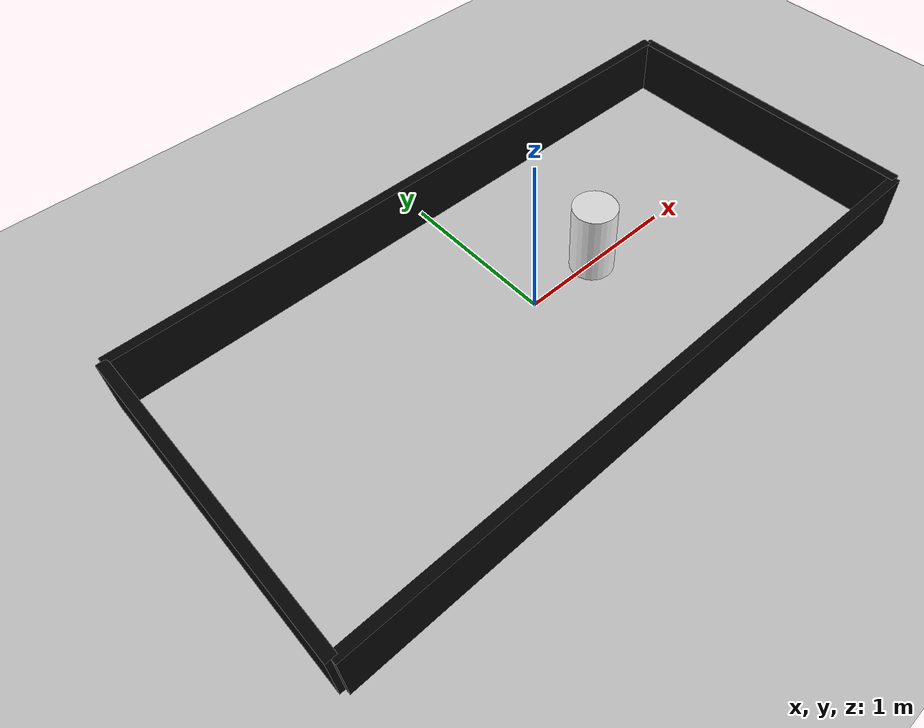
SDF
<?xml version="1.0"?>
<sdf version="1.6">
  <world name="aufgabe03_arena">
    <include><uri>model://sun</uri></include>
    <include><uri>model://ground_plane</uri></include>

    <model name="wall_north">
      <static>true</static>
      <pose>0 0.949 0.175 0 0 0</pose>
      <link name="link">
        <collision name="collision"><geometry><box><size>3.9 0.06 0.35</size></box></geometry></collision>
        <visual name="visual"><geometry><box><size>3.9 0.06 0.35</size></box></geometry>
          <material><ambient>0.02 0.02 0.02 1</ambient><diffuse>0.02 0.02 0.02 1</diffuse></material>
        </visual>
      </link>
    </model>

    <model name="wall_south">
      <static>true</static>
      <pose>0 -0.949 0.175 0 0 0</pose>
      <link name="link">
        <collision name="collision"><geometry><box><size>3.9 0.06 0.35</size></box></geometry></collision>
        <visual name="visual"><geometry><box><size>3.9 0.06 0.35</size></box></geometry>
          <material><ambient>0.02 0.02 0.02 1</ambient><diffuse>0.02 0.02 0.02 1</diffuse></material>
        </visual>
      </link>
    </model>

    <model name="wall_east">
      <static>true</static>
      <pose>1.95 0 0.175 0 0 0</pose>
      <link name="link">
        <collision name="collision"><geometry><box><size>0.06 1.898 0.35</size></box></geometry></collision>
        <visual name="visual"><geometry><box><size>0.06 1.898 0.35</size></box></geometry>
          <material><ambient>0.02 0.02 0.02 1</ambient><diffuse>0.02 0.02 0.02 1</diffuse></material>
        </visual>
      </link>
    </model>

    <model name="wall_west">
      <static>true</static>
      <pose>-1.95 0 0.175 0 0 0</pose>
      <link name="link">
        <collision name="collision"><geometry><box><size>0.06 1.898 0.35</size></box></geometry></collision>
        <visual name="visual"><geometry><box><size>0.06 1.898 0.35</size></box></geometry>
          <material><ambient>0.02 0.02 0.02 1</ambient><diffuse>0.02 0.02 0.02 1</diffuse></material>
        </visual>
      </link>
    </model>

    <model name="unmapped_obstacle">
      <static>true</static>
      <pose>0.45 0.0 0.225 0 0 0</pose>
      <link name="link">
        <collision name="collision"><geometry><cylinder><radius>0.13</radius><length>0.45</length></cylinder></geometry></collision>
        <visual name="visual"><geometry><cylinder><radius>0.13</radius><length>0.45</length></cylinder></geometry>
          <material><ambient>0.9 0.9 0.9 1</ambient><diffuse>0.9 0.9 0.9 1</diffuse></material>
        </visual>
      </link>
    </model>
  </world>
</sdf>
